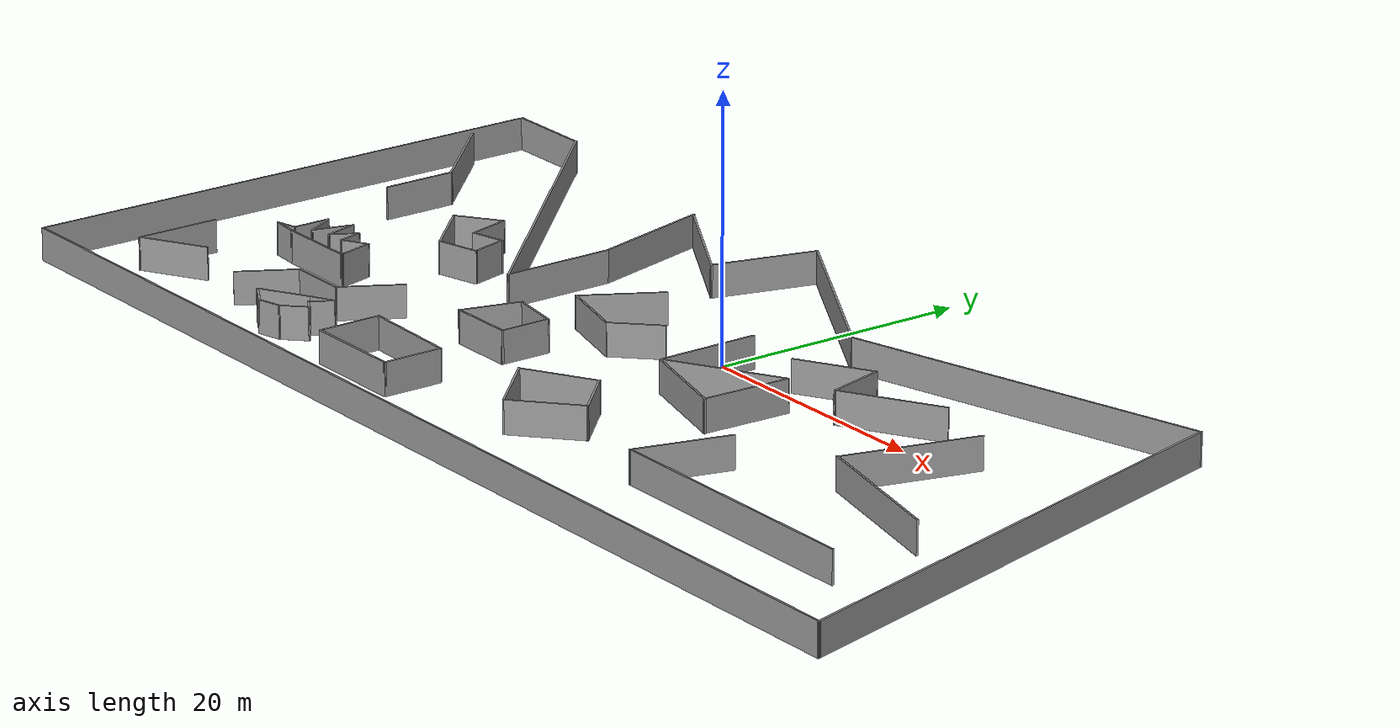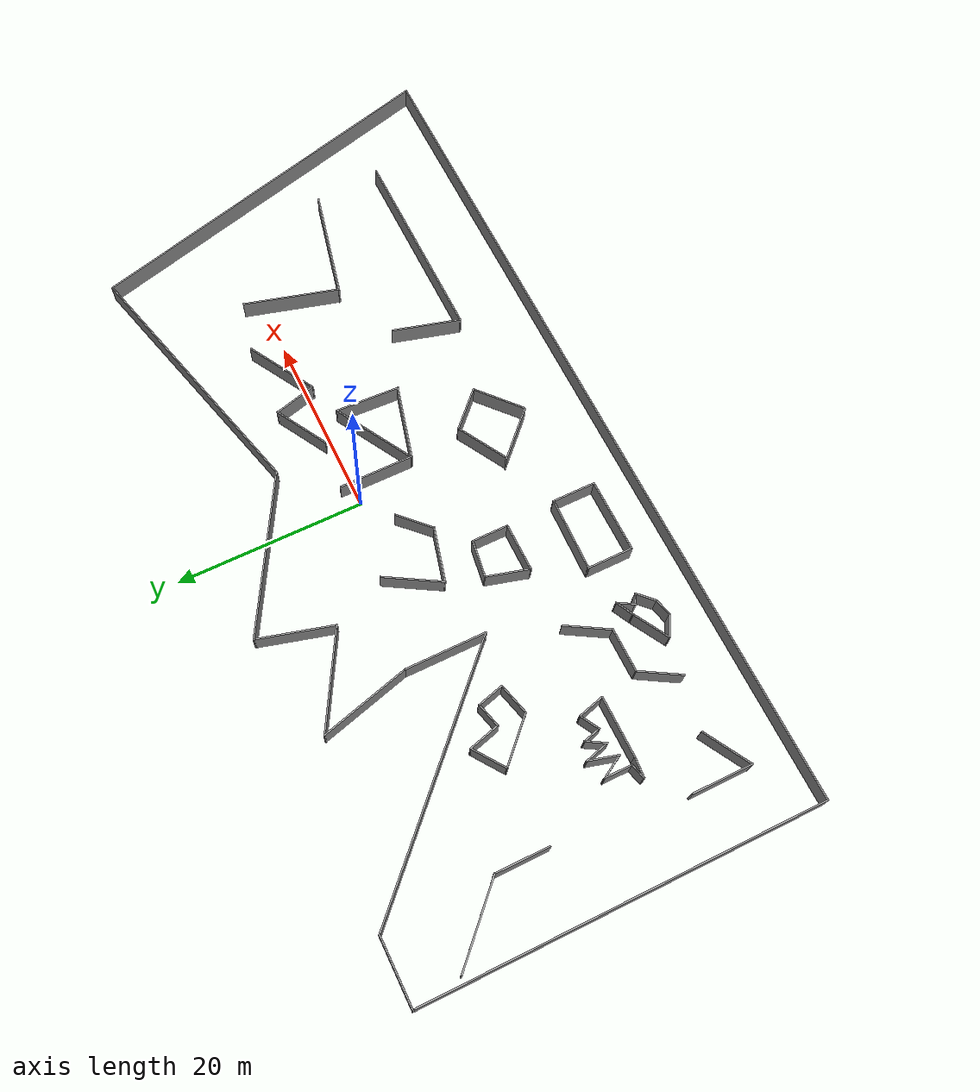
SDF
<?xml version='1.0'?>
<sdf version='1.7'>
  <model name='custommap3'>
    <pose>-0.859652 -5.04721 0 0 -0 0</pose>
    <link name='Wall_10'>
      <collision name='Wall_10_Collision'>
        <geometry>
          <box>
            <size>8.75 0.15 2.5</size>
          </box>
        </geometry>
        <pose>0 0 1.25 0 -0 0</pose>
      </collision>
      <visual name='Wall_10_Visual'>
        <pose>0 0 1.25 0 -0 0</pose>
        <geometry>
          <box>
            <size>8.75 0.15 2.5</size>
          </box>
        </geometry>
        <material>
          <script>
            <uri>file://media/materials/scripts/gazebo.material</uri>
            <name>Gazebo/Grey</name>
          </script>
          <ambient>1 1 1 1</ambient>
        </material>
        <meta>
          <layer>0</layer>
        </meta>
      </visual>
      <pose>-17.6193 4.39132 0 0 -0 -1.5708</pose>
    </link>
    <link name='Wall_11'>
      <collision name='Wall_11_Collision'>
        <geometry>
          <box>
            <size>29.75 0.15 2.5</size>
          </box>
        </geometry>
        <pose>0 0 1.25 0 -0 0</pose>
      </collision>
      <visual name='Wall_11_Visual'>
        <pose>0 0 1.25 0 -0 0</pose>
        <geometry>
          <box>
            <size>29.75 0.15 2.5</size>
          </box>
        </geometry>
        <material>
          <script>
            <uri>file://media/materials/scripts/gazebo.material</uri>
            <name>Gazebo/Grey</name>
          </script>
          <ambient>1 1 1 1</ambient>
        </material>
        <meta>
          <layer>0</layer>
        </meta>
      </visual>
      <pose>-28.0844 10.5565 0 0 -0 2.35619</pose>
    </link>
    <link name='Wall_12'>
      <collision name='Wall_12_Collision'>
        <geometry>
          <box>
            <size>7 0.15 2.5</size>
          </box>
        </geometry>
        <pose>0 0 1.25 0 -0 0</pose>
      </collision>
      <visual name='Wall_12_Visual'>
        <pose>0 0 1.25 0 -0 0</pose>
        <geometry>
          <box>
            <size>7 0.15 2.5</size>
          </box>
        </geometry>
        <material>
          <script>
            <uri>file://media/materials/scripts/gazebo.material</uri>
            <name>Gazebo/Grey</name>
          </script>
          <ambient>1 1 1 1</ambient>
        </material>
        <meta>
          <layer>0</layer>
        </meta>
      </visual>
      <pose>-41.9746 21.0217 0 0 -0 3.14159</pose>
    </link>
    <link name='Wall_14'>
      <collision name='Wall_14_Collision'>
        <geometry>
          <box>
            <size>9.25 0.15 2.5</size>
          </box>
        </geometry>
        <pose>0 0 1.25 0 -0 0</pose>
      </collision>
      <visual name='Wall_14_Visual'>
        <pose>0 0 1.25 0 -0 0</pose>
        <geometry>
          <box>
            <size>9.25 0.15 2.5</size>
          </box>
        </geometry>
        <material>
          <script>
            <uri>file://media/materials/scripts/gazebo.material</uri>
            <name>Gazebo/Grey</name>
          </script>
          <ambient>1 1 1 1</ambient>
        </material>
        <meta>
          <layer>0</layer>
        </meta>
      </visual>
      <pose>-41.4378 12.7145 0 0 -0 -0.785398</pose>
    </link>
    <link name='Wall_15'>
      <collision name='Wall_15_Collision'>
        <geometry>
          <box>
            <size>5.75 0.15 2.5</size>
          </box>
        </geometry>
        <pose>0 0 1.25 0 -0 0</pose>
      </collision>
      <visual name='Wall_15_Visual'>
        <pose>0 0 1.25 0 -0 0</pose>
        <geometry>
          <box>
            <size>5.75 0.15 2.5</size>
          </box>
        </geometry>
        <material>
          <script>
            <uri>file://media/materials/scripts/gazebo.material</uri>
            <name>Gazebo/Grey</name>
          </script>
          <ambient>1 1 1 1</ambient>
        </material>
        <meta>
          <layer>0</layer>
        </meta>
      </visual>
      <pose>-38.2204 6.6972 0 0 -0 -1.5708</pose>
    </link>
    <link name='Wall_17'>
      <collision name='Wall_17_Collision'>
        <geometry>
          <box>
            <size>6.5 0.15 2.5</size>
          </box>
        </geometry>
        <pose>0 0 1.25 0 -0 0</pose>
      </collision>
      <visual name='Wall_17_Visual'>
        <pose>0 0 1.25 0 -0 0</pose>
        <geometry>
          <box>
            <size>6.5 0.15 2.5</size>
          </box>
        </geometry>
        <material>
          <script>
            <uri>file://media/materials/scripts/gazebo.material</uri>
            <name>Gazebo/Grey</name>
          </script>
          <ambient>1 1 1 1</ambient>
        </material>
        <meta>
          <layer>0</layer>
        </meta>
      </visual>
      <pose>-31.2203 -6.99342 0 0 -0 0</pose>
    </link>
    <link name='Wall_18'>
      <collision name='Wall_18_Collision'>
        <geometry>
          <box>
            <size>3 0.15 2.5</size>
          </box>
        </geometry>
        <pose>0 0 1.25 0 -0 0</pose>
      </collision>
      <visual name='Wall_18_Visual'>
        <pose>0 0 1.25 0 -0 0</pose>
        <geometry>
          <box>
            <size>3 0.15 2.5</size>
          </box>
        </geometry>
        <material>
          <script>
            <uri>file://media/materials/scripts/gazebo.material</uri>
            <name>Gazebo/Grey</name>
          </script>
          <ambient>1 1 1 1</ambient>
        </material>
        <meta>
          <layer>0</layer>
        </meta>
      </visual>
      <pose>-28.4141 -5.61698 0 0 -0 1.8326</pose>
    </link>
    <link name='Wall_19'>
      <collision name='Wall_19_Collision'>
        <geometry>
          <box>
            <size>2.25 0.15 2.5</size>
          </box>
        </geometry>
        <pose>0 0 1.25 0 -0 0</pose>
      </collision>
      <visual name='Wall_19_Visual'>
        <pose>0 0 1.25 0 -0 0</pose>
        <geometry>
          <box>
            <size>2.25 0.15 2.5</size>
          </box>
        </geometry>
        <material>
          <script>
            <uri>file://media/materials/scripts/gazebo.material</uri>
            <name>Gazebo/Grey</name>
          </script>
          <ambient>1 1 1 1</ambient>
        </material>
        <meta>
          <layer>0</layer>
        </meta>
      </visual>
      <pose>-29.6923 -4.76553 0 0 -0 -2.61799</pose>
    </link>
    <link name='Wall_2'>
      <collision name='Wall_2_Collision'>
        <geometry>
          <box>
            <size>42 0.15 2.5</size>
          </box>
        </geometry>
        <pose>0 0 1.25 0 -0 0</pose>
      </collision>
      <visual name='Wall_2_Visual'>
        <pose>0 0 1.25 0 -0 0</pose>
        <geometry>
          <box>
            <size>42 0.15 2.5</size>
          </box>
        </geometry>
        <material>
          <script>
            <uri>file://media/materials/scripts/gazebo.material</uri>
            <name>Gazebo/Grey</name>
          </script>
          <ambient>1 1 1 1</ambient>
        </material>
        <meta>
          <layer>0</layer>
        </meta>
      </visual>
      <pose>-45.4334 -0.110896 0 0 -0 -1.5708</pose>
    </link>
    <link name='Wall_20'>
      <collision name='Wall_20_Collision'>
        <geometry>
          <box>
            <size>2 0.15 2.5</size>
          </box>
        </geometry>
        <pose>0 0 1.25 0 -0 0</pose>
      </collision>
      <visual name='Wall_20_Visual'>
        <pose>0 0 1.25 0 -0 0</pose>
        <geometry>
          <box>
            <size>2 0.15 2.5</size>
          </box>
        </geometry>
        <material>
          <script>
            <uri>file://media/materials/scripts/gazebo.material</uri>
            <name>Gazebo/Grey</name>
          </script>
          <ambient>1 1 1 1</ambient>
        </material>
        <meta>
          <layer>0</layer>
        </meta>
      </visual>
      <pose>-30.841 -4.39705 0 0 -0 1.8326</pose>
    </link>
    <link name='Wall_21'>
      <collision name='Wall_21_Collision'>
        <geometry>
          <box>
            <size>2.25 0.15 2.5</size>
          </box>
        </geometry>
        <pose>0 0 1.25 0 -0 0</pose>
      </collision>
      <visual name='Wall_21_Visual'>
        <pose>0 0 1.25 0 -0 0</pose>
        <geometry>
          <box>
            <size>2.25 0.15 2.5</size>
          </box>
        </geometry>
        <material>
          <script>
            <uri>file://media/materials/scripts/gazebo.material</uri>
            <name>Gazebo/Grey</name>
          </script>
          <ambient>1 1 1 1</ambient>
        </material>
        <meta>
          <layer>0</layer>
        </meta>
      </visual>
      <pose>-31.6054 -4.41289 0 0 -0 -2.0944</pose>
    </link>
    <link name='Wall_22'>
      <collision name='Wall_22_Collision'>
        <geometry>
          <box>
            <size>2.75 0.15 2.5</size>
          </box>
        </geometry>
        <pose>0 0 1.25 0 -0 0</pose>
      </collision>
      <visual name='Wall_22_Visual'>
        <pose>0 0 1.25 0 -0 0</pose>
        <geometry>
          <box>
            <size>2.75 0.15 2.5</size>
          </box>
        </geometry>
        <material>
          <script>
            <uri>file://media/materials/scripts/gazebo.material</uri>
            <name>Gazebo/Grey</name>
          </script>
          <ambient>1 1 1 1</ambient>
        </material>
        <meta>
          <layer>0</layer>
        </meta>
      </visual>
      <pose>-32.4669 -4.06652 0 0 -0 1.8326</pose>
    </link>
    <link name='Wall_23'>
      <collision name='Wall_23_Collision'>
        <geometry>
          <box>
            <size>3.25 0.15 2.5</size>
          </box>
        </geometry>
        <pose>0 0 1.25 0 -0 0</pose>
      </collision>
      <visual name='Wall_23_Visual'>
        <pose>0 0 1.25 0 -0 0</pose>
        <geometry>
          <box>
            <size>3.25 0.15 2.5</size>
          </box>
        </geometry>
        <material>
          <script>
            <uri>file://media/materials/scripts/gazebo.material</uri>
            <name>Gazebo/Grey</name>
          </script>
          <ambient>1 1 1 1</ambient>
        </material>
        <meta>
          <layer>0</layer>
        </meta>
      </visual>
      <pose>-33.2045 -4.308 0 0 -0 -1.8326</pose>
    </link>
    <link name='Wall_24'>
      <collision name='Wall_24_Collision'>
        <geometry>
          <box>
            <size>2.75 0.15 2.5</size>
          </box>
        </geometry>
        <pose>0 0 1.25 0 -0 0</pose>
      </collision>
      <visual name='Wall_24_Visual'>
        <pose>0 0 1.25 0 -0 0</pose>
        <geometry>
          <box>
            <size>2.75 0.15 2.5</size>
          </box>
        </geometry>
        <material>
          <script>
            <uri>file://media/materials/scripts/gazebo.material</uri>
            <name>Gazebo/Grey</name>
          </script>
          <ambient>1 1 1 1</ambient>
        </material>
        <meta>
          <layer>0</layer>
        </meta>
      </visual>
      <pose>-34.2557 -4.67935 0 0 -0 2.0944</pose>
    </link>
    <link name='Wall_25'>
      <collision name='Wall_25_Collision'>
        <geometry>
          <box>
            <size>3 0.15 2.5</size>
          </box>
        </geometry>
        <pose>0 0 1.25 0 -0 0</pose>
      </collision>
      <visual name='Wall_25_Visual'>
        <pose>0 0 1.25 0 -0 0</pose>
        <geometry>
          <box>
            <size>3 0.15 2.5</size>
          </box>
        </geometry>
        <material>
          <script>
            <uri>file://media/materials/scripts/gazebo.material</uri>
            <name>Gazebo/Grey</name>
          </script>
          <ambient>1 1 1 1</ambient>
        </material>
        <meta>
          <layer>0</layer>
        </meta>
      </visual>
      <pose>-34.9057 -4.97852 0 0 -0 -1.5708</pose>
    </link>
    <link name='Wall_26'>
      <collision name='Wall_26_Collision'>
        <geometry>
          <box>
            <size>1.75 0.15 2.5</size>
          </box>
        </geometry>
        <pose>0 0 1.25 0 -0 0</pose>
      </collision>
      <visual name='Wall_26_Visual'>
        <pose>0 0 1.25 0 -0 0</pose>
        <geometry>
          <box>
            <size>1.75 0.15 2.5</size>
          </box>
        </geometry>
        <material>
          <script>
            <uri>file://media/materials/scripts/gazebo.material</uri>
            <name>Gazebo/Grey</name>
          </script>
          <ambient>1 1 1 1</ambient>
        </material>
        <meta>
          <layer>0</layer>
        </meta>
      </visual>
      <pose>-35.6784 -6.61057 0 0 -0 -2.87979</pose>
    </link>
    <link name='Wall_27'>
      <collision name='Wall_27_Collision'>
        <geometry>
          <box>
            <size>2.21335 0.15 2.5</size>
          </box>
        </geometry>
        <pose>0 0 1.25 0 -0 0</pose>
      </collision>
      <visual name='Wall_27_Visual'>
        <pose>0 0 1.25 0 -0 0</pose>
        <geometry>
          <box>
            <size>2.21335 0.15 2.5</size>
          </box>
        </geometry>
        <material>
          <script>
            <uri>file://media/materials/scripts/gazebo.material</uri>
            <name>Gazebo/Grey</name>
          </script>
          <ambient>1 1 1 1</ambient>
        </material>
        <meta>
          <layer>0</layer>
        </meta>
      </visual>
      <pose>-35.4233 -6.90552 0 0 -0 -0.0853</pose>
    </link>
    <link name='Wall_29'>
      <collision name='Wall_29_Collision'>
        <geometry>
          <box>
            <size>5 0.15 2.5</size>
          </box>
        </geometry>
        <pose>0 0 1.25 0 -0 0</pose>
      </collision>
      <visual name='Wall_29_Visual'>
        <pose>0 0 1.25 0 -0 0</pose>
        <geometry>
          <box>
            <size>5 0.15 2.5</size>
          </box>
        </geometry>
        <material>
          <script>
            <uri>file://media/materials/scripts/gazebo.material</uri>
            <name>Gazebo/Grey</name>
          </script>
          <ambient>1 1 1 1</ambient>
        </material>
        <meta>
          <layer>0</layer>
        </meta>
      </visual>
      <pose>-21.3857 -9.02277 0 0 -0 -2.0944</pose>
    </link>
    <link name='Wall_3'>
      <collision name='Wall_3_Collision'>
        <geometry>
          <box>
            <size>91 0.15 2.5</size>
          </box>
        </geometry>
        <pose>0 0 1.25 0 -0 0</pose>
      </collision>
      <visual name='Wall_3_Visual'>
        <pose>0 0 1.25 0 -0 0</pose>
        <geometry>
          <box>
            <size>91 0.15 2.5</size>
          </box>
        </geometry>
        <material>
          <script>
            <uri>file://media/materials/scripts/gazebo.material</uri>
            <name>Gazebo/Grey</name>
          </script>
          <ambient>1 1 1 1</ambient>
        </material>
        <meta>
          <layer>0</layer>
        </meta>
      </visual>
      <pose>-0.008428 -21.0359 0 0 -0 0</pose>
    </link>
    <link name='Wall_30'>
      <collision name='Wall_30_Collision'>
        <geometry>
          <box>
            <size>4.75 0.15 2.5</size>
          </box>
        </geometry>
        <pose>0 0 1.25 0 -0 0</pose>
      </collision>
      <visual name='Wall_30_Visual'>
        <pose>0 0 1.25 0 -0 0</pose>
        <geometry>
          <box>
            <size>4.75 0.15 2.5</size>
          </box>
        </geometry>
        <material>
          <script>
            <uri>file://media/materials/scripts/gazebo.material</uri>
            <name>Gazebo/Grey</name>
          </script>
          <ambient>1 1 1 1</ambient>
        </material>
        <meta>
          <layer>0</layer>
        </meta>
      </visual>
      <pose>-24.8982 -11.1229 0 0 -0 3.14159</pose>
    </link>
    <link name='Wall_31'>
      <collision name='Wall_31_Collision'>
        <geometry>
          <box>
            <size>4.75 0.15 2.5</size>
          </box>
        </geometry>
        <pose>0 0 1.25 0 -0 0</pose>
      </collision>
      <visual name='Wall_31_Visual'>
        <pose>0 0 1.25 0 -0 0</pose>
        <geometry>
          <box>
            <size>4.75 0.15 2.5</size>
          </box>
        </geometry>
        <material>
          <script>
            <uri>file://media/materials/scripts/gazebo.material</uri>
            <name>Gazebo/Grey</name>
          </script>
          <ambient>1 1 1 1</ambient>
        </material>
        <meta>
          <layer>0</layer>
        </meta>
      </visual>
      <pose>-28.3482 -13.1147 0 0 -0 -2.0944</pose>
    </link>
    <link name='Wall_33'>
      <collision name='Wall_33_Collision'>
        <geometry>
          <box>
            <size>4.75 0.15 2.5</size>
          </box>
        </geometry>
        <pose>0 0 1.25 0 -0 0</pose>
      </collision>
      <visual name='Wall_33_Visual'>
        <pose>0 0 1.25 0 -0 0</pose>
        <geometry>
          <box>
            <size>4.75 0.15 2.5</size>
          </box>
        </geometry>
        <material>
          <script>
            <uri>file://media/materials/scripts/gazebo.material</uri>
            <name>Gazebo/Grey</name>
          </script>
          <ambient>1 1 1 1</ambient>
        </material>
        <meta>
          <layer>0</layer>
        </meta>
      </visual>
      <pose>-13.0559 -4.61584 0 0 -0 -1.8326</pose>
    </link>
    <link name='Wall_34'>
      <collision name='Wall_34_Collision'>
        <geometry>
          <box>
            <size>5.25 0.15 2.5</size>
          </box>
        </geometry>
        <pose>0 0 1.25 0 -0 0</pose>
      </collision>
      <visual name='Wall_34_Visual'>
        <pose>0 0 1.25 0 -0 0</pose>
        <geometry>
          <box>
            <size>5.25 0.15 2.5</size>
          </box>
        </geometry>
        <material>
          <script>
            <uri>file://media/materials/scripts/gazebo.material</uri>
            <name>Gazebo/Grey</name>
          </script>
          <ambient>1 1 1 1</ambient>
        </material>
        <meta>
          <layer>0</layer>
        </meta>
      </visual>
      <pose>-11.1012 -6.83747 0 0 -0 0</pose>
    </link>
    <link name='Wall_35'>
      <collision name='Wall_35_Collision'>
        <geometry>
          <box>
            <size>4 0.15 2.5</size>
          </box>
        </geometry>
        <pose>0 0 1.25 0 -0 0</pose>
      </collision>
      <visual name='Wall_35_Visual'>
        <pose>0 0 1.25 0 -0 0</pose>
        <geometry>
          <box>
            <size>4 0.15 2.5</size>
          </box>
        </geometry>
        <material>
          <script>
            <uri>file://media/materials/scripts/gazebo.material</uri>
            <name>Gazebo/Grey</name>
          </script>
          <ambient>1 1 1 1</ambient>
        </material>
        <meta>
          <layer>0</layer>
        </meta>
      </visual>
      <pose>-8.55121 -4.91247 0 0 -0 1.5708</pose>
    </link>
    <link name='Wall_36'>
      <collision name='Wall_36_Collision'>
        <geometry>
          <box>
            <size>4.10419 0.15 2.5</size>
          </box>
        </geometry>
        <pose>0 0 1.25 0 -0 0</pose>
      </collision>
      <visual name='Wall_36_Visual'>
        <pose>0 0 1.25 0 -0 0</pose>
        <geometry>
          <box>
            <size>4.10419 0.15 2.5</size>
          </box>
        </geometry>
        <material>
          <script>
            <uri>file://media/materials/scripts/gazebo.material</uri>
            <name>Gazebo/Grey</name>
          </script>
          <ambient>1 1 1 1</ambient>
        </material>
        <meta>
          <layer>0</layer>
        </meta>
      </visual>
      <pose>-10.5059 -2.69084 0 0 -0 2.99099</pose>
    </link>
    <link name='Wall_38'>
      <collision name='Wall_38_Collision'>
        <geometry>
          <box>
            <size>5.75 0.15 2.5</size>
          </box>
        </geometry>
        <pose>0 0 1.25 0 -0 0</pose>
      </collision>
      <visual name='Wall_38_Visual'>
        <pose>0 0 1.25 0 -0 0</pose>
        <geometry>
          <box>
            <size>5.75 0.15 2.5</size>
          </box>
        </geometry>
        <material>
          <script>
            <uri>file://media/materials/scripts/gazebo.material</uri>
            <name>Gazebo/Grey</name>
          </script>
          <ambient>1 1 1 1</ambient>
        </material>
        <meta>
          <layer>0</layer>
        </meta>
      </visual>
      <pose>-28.2408 2.2063 0 0 -0 -0.785398</pose>
    </link>
    <link name='Wall_39'>
      <collision name='Wall_39_Collision'>
        <geometry>
          <box>
            <size>3.5 0.15 2.5</size>
          </box>
        </geometry>
        <pose>0 0 1.25 0 -0 0</pose>
      </collision>
      <visual name='Wall_39_Visual'>
        <pose>0 0 1.25 0 -0 0</pose>
        <geometry>
          <box>
            <size>3.5 0.15 2.5</size>
          </box>
        </geometry>
        <material>
          <script>
            <uri>file://media/materials/scripts/gazebo.material</uri>
            <name>Gazebo/Grey</name>
          </script>
          <ambient>1 1 1 1</ambient>
        </material>
        <meta>
          <layer>0</layer>
        </meta>
      </visual>
      <pose>-24.6429 0.65992 0 0 -0 0.261799</pose>
    </link>
    <link name='Wall_4'>
      <collision name='Wall_4_Collision'>
        <geometry>
          <box>
            <size>41.75 0.15 2.5</size>
          </box>
        </geometry>
        <pose>0 0 1.25 0 -0 0</pose>
      </collision>
      <visual name='Wall_4_Visual'>
        <pose>0 0 1.25 0 -0 0</pose>
        <geometry>
          <box>
            <size>41.75 0.15 2.5</size>
          </box>
        </geometry>
        <material>
          <script>
            <uri>file://media/materials/scripts/gazebo.material</uri>
            <name>Gazebo/Grey</name>
          </script>
          <ambient>1 1 1 1</ambient>
        </material>
        <meta>
          <layer>0</layer>
        </meta>
      </visual>
      <pose>40.0331 -0.944638 0 0 -0 1.8326</pose>
    </link>
    <link name='Wall_40'>
      <collision name='Wall_40_Collision'>
        <geometry>
          <box>
            <size>3 0.15 2.5</size>
          </box>
        </geometry>
        <pose>0 0 1.25 0 -0 0</pose>
      </collision>
      <visual name='Wall_40_Visual'>
        <pose>0 0 1.25 0 -0 0</pose>
        <geometry>
          <box>
            <size>3 0.15 2.5</size>
          </box>
        </geometry>
        <material>
          <script>
            <uri>file://media/materials/scripts/gazebo.material</uri>
            <name>Gazebo/Grey</name>
          </script>
          <ambient>1 1 1 1</ambient>
        </material>
        <meta>
          <layer>0</layer>
        </meta>
      </visual>
      <pose>-23.3938 2.46989 0 0 -0 1.8326</pose>
    </link>
    <link name='Wall_41'>
      <collision name='Wall_41_Collision'>
        <geometry>
          <box>
            <size>2.75 0.15 2.5</size>
          </box>
        </geometry>
        <pose>0 0 1.25 0 -0 0</pose>
      </collision>
      <visual name='Wall_41_Visual'>
        <pose>0 0 1.25 0 -0 0</pose>
        <geometry>
          <box>
            <size>2.75 0.15 2.5</size>
          </box>
        </geometry>
        <material>
          <script>
            <uri>file://media/materials/scripts/gazebo.material</uri>
            <name>Gazebo/Grey</name>
          </script>
          <ambient>1 1 1 1</ambient>
        </material>
        <meta>
          <layer>0</layer>
        </meta>
      </visual>
      <pose>-25.0183 3.50987 0 0 -0 -2.87979</pose>
    </link>
    <link name='Wall_42'>
      <collision name='Wall_42_Collision'>
        <geometry>
          <box>
            <size>3.5 0.15 2.5</size>
          </box>
        </geometry>
        <pose>0 0 1.25 0 -0 0</pose>
      </collision>
      <visual name='Wall_42_Visual'>
        <pose>0 0 1.25 0 -0 0</pose>
        <geometry>
          <box>
            <size>3.5 0.15 2.5</size>
          </box>
        </geometry>
        <material>
          <script>
            <uri>file://media/materials/scripts/gazebo.material</uri>
            <name>Gazebo/Grey</name>
          </script>
          <ambient>1 1 1 1</ambient>
        </material>
        <meta>
          <layer>0</layer>
        </meta>
      </visual>
      <pose>-26.7076 4.79133 0 0 -0 1.8326</pose>
    </link>
    <link name='Wall_43'>
      <collision name='Wall_43_Collision'>
        <geometry>
          <box>
            <size>3.94812 0.15 2.5</size>
          </box>
        </geometry>
        <pose>0 0 1.25 0 -0 0</pose>
      </collision>
      <visual name='Wall_43_Visual'>
        <pose>0 0 1.25 0 -0 0</pose>
        <geometry>
          <box>
            <size>3.94812 0.15 2.5</size>
          </box>
        </geometry>
        <material>
          <script>
            <uri>file://media/materials/scripts/gazebo.material</uri>
            <name>Gazebo/Grey</name>
          </script>
          <ambient>1 1 1 1</ambient>
        </material>
        <meta>
          <layer>0</layer>
        </meta>
      </visual>
      <pose>-28.6809 5.29772 0 0 -0 -2.51634</pose>
    </link>
    <link name='Wall_45'>
      <collision name='Wall_45_Collision'>
        <geometry>
          <box>
            <size>6.5 0.15 2.5</size>
          </box>
        </geometry>
        <pose>0 0 1.25 0 -0 0</pose>
      </collision>
      <visual name='Wall_45_Visual'>
        <pose>0 0 1.25 0 -0 0</pose>
        <geometry>
          <box>
            <size>6.5 0.15 2.5</size>
          </box>
        </geometry>
        <material>
          <script>
            <uri>file://media/materials/scripts/gazebo.material</uri>
            <name>Gazebo/Grey</name>
          </script>
          <ambient>1 1 1 1</ambient>
        </material>
        <meta>
          <layer>0</layer>
        </meta>
      </visual>
      <pose>-39.6313 -13.3525 0 0 -0 -1.5708</pose>
    </link>
    <link name='Wall_46'>
      <collision name='Wall_46_Collision'>
        <geometry>
          <box>
            <size>5.5 0.15 2.5</size>
          </box>
        </geometry>
        <pose>0 0 1.25 0 -0 0</pose>
      </collision>
      <visual name='Wall_46_Visual'>
        <pose>0 0 1.25 0 -0 0</pose>
        <geometry>
          <box>
            <size>5.5 0.15 2.5</size>
          </box>
        </geometry>
        <material>
          <script>
            <uri>file://media/materials/scripts/gazebo.material</uri>
            <name>Gazebo/Grey</name>
          </script>
          <ambient>1 1 1 1</ambient>
        </material>
        <meta>
          <layer>0</layer>
        </meta>
      </visual>
      <pose>-37.3147 -15.19 0 0 -0 0.523599</pose>
    </link>
    <link name='Wall_48'>
      <collision name='Wall_48_Collision'>
        <geometry>
          <box>
            <size>6.5 0.15 2.5</size>
          </box>
        </geometry>
        <pose>0 0 1.25 0 -0 0</pose>
      </collision>
      <visual name='Wall_48_Visual'>
        <pose>0 0 1.25 0 -0 0</pose>
        <geometry>
          <box>
            <size>6.5 0.15 2.5</size>
          </box>
        </geometry>
        <material>
          <script>
            <uri>file://media/materials/scripts/gazebo.material</uri>
            <name>Gazebo/Grey</name>
          </script>
          <ambient>1 1 1 1</ambient>
        </material>
        <meta>
          <layer>0</layer>
        </meta>
      </visual>
      <pose>-9.6612 4.12533 0 0 -0 -2.0944</pose>
    </link>
    <link name='Wall_49'>
      <collision name='Wall_49_Collision'>
        <geometry>
          <box>
            <size>6 0.15 2.5</size>
          </box>
        </geometry>
        <pose>0 0 1.25 0 -0 0</pose>
      </collision>
      <visual name='Wall_49_Visual'>
        <pose>0 0 1.25 0 -0 0</pose>
        <geometry>
          <box>
            <size>6 0.15 2.5</size>
          </box>
        </geometry>
        <material>
          <script>
            <uri>file://media/materials/scripts/gazebo.material</uri>
            <name>Gazebo/Grey</name>
          </script>
          <ambient>1 1 1 1</ambient>
        </material>
        <meta>
          <layer>0</layer>
        </meta>
      </visual>
      <pose>-8.42337 0.618657 0 0 -0 -0.261799</pose>
    </link>
    <link name='Wall_5'>
      <collision name='Wall_5_Collision'>
        <geometry>
          <box>
            <size>29 0.15 2.5</size>
          </box>
        </geometry>
        <pose>0 0 1.25 0 -0 0</pose>
      </collision>
      <visual name='Wall_5_Visual'>
        <pose>0 0 1.25 0 -0 0</pose>
        <geometry>
          <box>
            <size>29 0.15 2.5</size>
          </box>
        </geometry>
        <material>
          <script>
            <uri>file://media/materials/scripts/gazebo.material</uri>
            <name>Gazebo/Grey</name>
          </script>
          <ambient>1 1 1 1</ambient>
        </material>
        <meta>
          <layer>0</layer>
        </meta>
      </visual>
      <pose>20.7162 15.4132 0 0 -0 -2.87979</pose>
    </link>
    <link name='Wall_50'>
      <collision name='Wall_50_Collision'>
        <geometry>
          <box>
            <size>4.25 0.15 2.5</size>
          </box>
        </geometry>
        <pose>0 0 1.25 0 -0 0</pose>
      </collision>
      <visual name='Wall_50_Visual'>
        <pose>0 0 1.25 0 -0 0</pose>
        <geometry>
          <box>
            <size>4.25 0.15 2.5</size>
          </box>
        </geometry>
        <material>
          <script>
            <uri>file://media/materials/scripts/gazebo.material</uri>
            <name>Gazebo/Grey</name>
          </script>
          <ambient>1 1 1 1</ambient>
        </material>
        <meta>
          <layer>0</layer>
        </meta>
      </visual>
      <pose>-4.14847 1.31118 0 0 -0 0.785398</pose>
    </link>
    <link name='Wall_54'>
      <collision name='Wall_54_Collision'>
        <geometry>
          <box>
            <size>8 0.15 2.5</size>
          </box>
        </geometry>
        <pose>0 0 1.25 0 -0 0</pose>
      </collision>
      <visual name='Wall_54_Visual'>
        <pose>0 0 1.25 0 -0 0</pose>
        <geometry>
          <box>
            <size>8 0.15 2.5</size>
          </box>
        </geometry>
        <material>
          <script>
            <uri>file://media/materials/scripts/gazebo.material</uri>
            <name>Gazebo/Grey</name>
          </script>
          <ambient>1 1 1 1</ambient>
        </material>
        <meta>
          <layer>0</layer>
        </meta>
      </visual>
      <pose>2.4691 2.52542 0 0 -0 -1.5708</pose>
    </link>
    <link name='Wall_55'>
      <collision name='Wall_55_Collision'>
        <geometry>
          <box>
            <size>9.5 0.15 2.5</size>
          </box>
        </geometry>
        <pose>0 0 1.25 0 -0 0</pose>
      </collision>
      <visual name='Wall_55_Visual'>
        <pose>0 0 1.25 0 -0 0</pose>
        <geometry>
          <box>
            <size>9.5 0.15 2.5</size>
          </box>
        </geometry>
        <material>
          <script>
            <uri>file://media/materials/scripts/gazebo.material</uri>
            <name>Gazebo/Grey</name>
          </script>
          <ambient>1 1 1 1</ambient>
        </material>
        <meta>
          <layer>0</layer>
        </meta>
      </visual>
      <pose>6.51777 0.937922 0 0 -0 0.523599</pose>
    </link>
    <link name='Wall_56'>
      <collision name='Wall_56_Collision'>
        <geometry>
          <box>
            <size>7.01054 0.15 2.5</size>
          </box>
        </geometry>
        <pose>0 0 1.25 0 -0 0</pose>
      </collision>
      <visual name='Wall_56_Visual'>
        <pose>0 0 1.25 0 -0 0</pose>
        <geometry>
          <box>
            <size>7.01054 0.15 2.5</size>
          </box>
        </geometry>
        <material>
          <script>
            <uri>file://media/materials/scripts/gazebo.material</uri>
            <name>Gazebo/Grey</name>
          </script>
          <ambient>1 1 1 1</ambient>
        </material>
        <meta>
          <layer>0</layer>
        </meta>
      </visual>
      <pose>10.4249 -0.151928 0 0 -0 -1.61206</pose>
    </link>
    <link name='Wall_57'>
      <collision name='Wall_57_Collision'>
        <geometry>
          <box>
            <size>8.25 0.15 2.5</size>
          </box>
        </geometry>
        <pose>0 0 1.25 0 -0 0</pose>
      </collision>
      <visual name='Wall_57_Visual'>
        <pose>0 0 1.25 0 -0 0</pose>
        <geometry>
          <box>
            <size>8.25 0.15 2.5</size>
          </box>
        </geometry>
        <material>
          <script>
            <uri>file://media/materials/scripts/gazebo.material</uri>
            <name>Gazebo/Grey</name>
          </script>
          <ambient>1 1 1 1</ambient>
        </material>
        <meta>
          <layer>0</layer>
        </meta>
      </visual>
      <pose>6.44217 -2.53106 0 0 -0 2.87979</pose>
    </link>
    <link name='Wall_59'>
      <collision name='Wall_59_Collision'>
        <geometry>
          <box>
            <size>6.25 0.15 2.5</size>
          </box>
        </geometry>
        <pose>0 0 1.25 0 -0 0</pose>
      </collision>
      <visual name='Wall_59_Visual'>
        <pose>0 0 1.25 0 -0 0</pose>
        <geometry>
          <box>
            <size>6.25 0.15 2.5</size>
          </box>
        </geometry>
        <material>
          <script>
            <uri>file://media/materials/scripts/gazebo.material</uri>
            <name>Gazebo/Grey</name>
          </script>
          <ambient>1 1 1 1</ambient>
        </material>
        <meta>
          <layer>0</layer>
        </meta>
      </visual>
      <pose>0.238838 -12.2634 0 0 -0 -0.785398</pose>
    </link>
    <link name='Wall_6'>
      <collision name='Wall_6_Collision'>
        <geometry>
          <box>
            <size>18 0.15 2.5</size>
          </box>
        </geometry>
        <pose>0 0 1.25 0 -0 0</pose>
      </collision>
      <visual name='Wall_6_Visual'>
        <pose>0 0 1.25 0 -0 0</pose>
        <geometry>
          <box>
            <size>18 0.15 2.5</size>
          </box>
        </geometry>
        <material>
          <script>
            <uri>file://media/materials/scripts/gazebo.material</uri>
            <name>Gazebo/Grey</name>
          </script>
          <ambient>1 1 1 1</ambient>
        </material>
        <meta>
          <layer>0</layer>
        </meta>
      </visual>
      <pose>-0.946537 16.1422 0 0 -0 2.61799</pose>
    </link>
    <link name='Wall_60'>
      <collision name='Wall_60_Collision'>
        <geometry>
          <box>
            <size>5.80784 0.15 2.5</size>
          </box>
        </geometry>
        <pose>0 0 1.25 0 -0 0</pose>
      </collision>
      <visual name='Wall_60_Visual'>
        <pose>0 0 1.25 0 -0 0</pose>
        <geometry>
          <box>
            <size>5.80784 0.15 2.5</size>
          </box>
        </geometry>
        <material>
          <script>
            <uri>file://media/materials/scripts/gazebo.material</uri>
            <name>Gazebo/Grey</name>
          </script>
          <ambient>1 1 1 1</ambient>
        </material>
        <meta>
          <layer>0</layer>
        </meta>
      </visual>
      <pose>4.64069 -12.5287 0 0 -0 0.732315</pose>
    </link>
    <link name='Wall_61'>
      <collision name='Wall_61_Collision'>
        <geometry>
          <box>
            <size>5 0.15 2.5</size>
          </box>
        </geometry>
        <pose>0 0 1.25 0 -0 0</pose>
      </collision>
      <visual name='Wall_61_Visual'>
        <pose>0 0 1.25 0 -0 0</pose>
        <geometry>
          <box>
            <size>5 0.15 2.5</size>
          </box>
        </geometry>
        <material>
          <script>
            <uri>file://media/materials/scripts/gazebo.material</uri>
            <name>Gazebo/Grey</name>
          </script>
          <ambient>1 1 1 1</ambient>
        </material>
        <meta>
          <layer>0</layer>
        </meta>
      </visual>
      <pose>5.02963 -8.92256 0 0 -0 2.35619</pose>
    </link>
    <link name='Wall_62'>
      <collision name='Wall_62_Collision'>
        <geometry>
          <box>
            <size>6 0.15 2.5</size>
          </box>
        </geometry>
        <pose>0 0 1.25 0 -0 0</pose>
      </collision>
      <visual name='Wall_62_Visual'>
        <pose>0 0 1.25 0 -0 0</pose>
        <geometry>
          <box>
            <size>6 0.15 2.5</size>
          </box>
        </geometry>
        <material>
          <script>
            <uri>file://media/materials/scripts/gazebo.material</uri>
            <name>Gazebo/Grey</name>
          </script>
          <ambient>1 1 1 1</ambient>
        </material>
        <meta>
          <layer>0</layer>
        </meta>
      </visual>
      <pose>0.781767 -8.67032 0 0 -0 -2.61799</pose>
    </link>
    <link name='Wall_64'>
      <collision name='Wall_64_Collision'>
        <geometry>
          <box>
            <size>5 0.15 2.5</size>
          </box>
        </geometry>
        <pose>0 0 1.25 0 -0 0</pose>
      </collision>
      <visual name='Wall_64_Visual'>
        <pose>0 0 1.25 0 -0 0</pose>
        <geometry>
          <box>
            <size>5 0.15 2.5</size>
          </box>
        </geometry>
        <material>
          <script>
            <uri>file://media/materials/scripts/gazebo.material</uri>
            <name>Gazebo/Grey</name>
          </script>
          <ambient>1 1 1 1</ambient>
        </material>
        <meta>
          <layer>0</layer>
        </meta>
      </visual>
      <pose>-15.9985 -14.4422 0 0 -0 -1.5708</pose>
    </link>
    <link name='Wall_65'>
      <collision name='Wall_65_Collision'>
        <geometry>
          <box>
            <size>8 0.15 2.5</size>
          </box>
        </geometry>
        <pose>0 0 1.25 0 -0 0</pose>
      </collision>
      <visual name='Wall_65_Visual'>
        <pose>0 0 1.25 0 -0 0</pose>
        <geometry>
          <box>
            <size>8 0.15 2.5</size>
          </box>
        </geometry>
        <material>
          <script>
            <uri>file://media/materials/scripts/gazebo.material</uri>
            <name>Gazebo/Grey</name>
          </script>
          <ambient>1 1 1 1</ambient>
        </material>
        <meta>
          <layer>0</layer>
        </meta>
      </visual>
      <pose>-12.0735 -16.8672 0 0 -0 0</pose>
    </link>
    <link name='Wall_66'>
      <collision name='Wall_66_Collision'>
        <geometry>
          <box>
            <size>4.75 0.15 2.5</size>
          </box>
        </geometry>
        <pose>0 0 1.25 0 -0 0</pose>
      </collision>
      <visual name='Wall_66_Visual'>
        <pose>0 0 1.25 0 -0 0</pose>
        <geometry>
          <box>
            <size>4.75 0.15 2.5</size>
          </box>
        </geometry>
        <material>
          <script>
            <uri>file://media/materials/scripts/gazebo.material</uri>
            <name>Gazebo/Grey</name>
          </script>
          <ambient>1 1 1 1</ambient>
        </material>
        <meta>
          <layer>0</layer>
        </meta>
      </visual>
      <pose>-8.14849 -14.5672 0 0 -0 1.5708</pose>
    </link>
    <link name='Wall_67'>
      <collision name='Wall_67_Collision'>
        <geometry>
          <box>
            <size>8.00398 0.15 2.5</size>
          </box>
        </geometry>
        <pose>0 0 1.25 0 -0 0</pose>
      </collision>
      <visual name='Wall_67_Visual'>
        <pose>0 0 1.25 0 -0 0</pose>
        <geometry>
          <box>
            <size>8.00398 0.15 2.5</size>
          </box>
        </geometry>
        <material>
          <script>
            <uri>file://media/materials/scripts/gazebo.material</uri>
            <name>Gazebo/Grey</name>
          </script>
          <ambient>1 1 1 1</ambient>
        </material>
        <meta>
          <layer>0</layer>
        </meta>
      </visual>
      <pose>-12.0735 -12.1422 0 0 -0 3.10976</pose>
    </link>
    <link name='Wall_69'>
      <collision name='Wall_69_Collision'>
        <geometry>
          <box>
            <size>7.5 0.15 2.5</size>
          </box>
        </geometry>
        <pose>0 0 1.25 0 -0 0</pose>
      </collision>
      <visual name='Wall_69_Visual'>
        <pose>0 0 1.25 0 -0 0</pose>
        <geometry>
          <box>
            <size>7.5 0.15 2.5</size>
          </box>
        </geometry>
        <material>
          <script>
            <uri>file://media/materials/scripts/gazebo.material</uri>
            <name>Gazebo/Grey</name>
          </script>
          <ambient>1 1 1 1</ambient>
        </material>
        <meta>
          <layer>0</layer>
        </meta>
      </visual>
      <pose>15.8816 -9.5526 0 0 -0 -1.8326</pose>
    </link>
    <link name='Wall_7'>
      <collision name='Wall_7_Collision'>
        <geometry>
          <box>
            <size>8.25 0.15 2.5</size>
          </box>
        </geometry>
        <pose>0 0 1.25 0 -0 0</pose>
      </collision>
      <visual name='Wall_7_Visual'>
        <pose>0 0 1.25 0 -0 0</pose>
        <geometry>
          <box>
            <size>8.25 0.15 2.5</size>
          </box>
        </geometry>
        <material>
          <script>
            <uri>file://media/materials/scripts/gazebo.material</uri>
            <name>Gazebo/Grey</name>
          </script>
          <ambient>1 1 1 1</ambient>
        </material>
        <meta>
          <layer>0</layer>
        </meta>
      </visual>
      <pose>-9.72403 16.6927 0 0 -0 -1.8326</pose>
    </link>
    <link name='Wall_70'>
      <collision name='Wall_70_Collision'>
        <geometry>
          <box>
            <size>21.75 0.15 2.5</size>
          </box>
        </geometry>
        <pose>0 0 1.25 0 -0 0</pose>
      </collision>
      <visual name='Wall_70_Visual'>
        <pose>0 0 1.25 0 -0 0</pose>
        <geometry>
          <box>
            <size>21.75 0.15 2.5</size>
          </box>
        </geometry>
        <material>
          <script>
            <uri>file://media/materials/scripts/gazebo.material</uri>
            <name>Gazebo/Grey</name>
          </script>
          <ambient>1 1 1 1</ambient>
        </material>
        <meta>
          <layer>0</layer>
        </meta>
      </visual>
      <pose>25.7305 -13.1024 0 0 -0 0</pose>
    </link>
    <link name='Wall_72'>
      <collision name='Wall_72_Collision'>
        <geometry>
          <box>
            <size>10.5 0.15 2.5</size>
          </box>
        </geometry>
        <pose>0 0 1.25 0 -0 0</pose>
      </collision>
      <visual name='Wall_72_Visual'>
        <pose>0 0 1.25 0 -0 0</pose>
        <geometry>
          <box>
            <size>10.5 0.15 2.5</size>
          </box>
        </geometry>
        <material>
          <script>
            <uri>file://media/materials/scripts/gazebo.material</uri>
            <name>Gazebo/Grey</name>
          </script>
          <ambient>1 1 1 1</ambient>
        </material>
        <meta>
          <layer>0</layer>
        </meta>
      </visual>
      <pose>25.3286 2.08857 0 0 -0 -1.8326</pose>
    </link>
    <link name='Wall_73'>
      <collision name='Wall_73_Collision'>
        <geometry>
          <box>
            <size>12.3261 0.15 2.5</size>
          </box>
        </geometry>
        <pose>0 0 1.25 0 -0 0</pose>
      </collision>
      <visual name='Wall_73_Visual'>
        <pose>0 0 1.25 0 -0 0</pose>
        <geometry>
          <box>
            <size>12.3261 0.15 2.5</size>
          </box>
        </geometry>
        <material>
          <script>
            <uri>file://media/materials/scripts/gazebo.material</uri>
            <name>Gazebo/Grey</name>
          </script>
          <ambient>1 1 1 1</ambient>
        </material>
        <meta>
          <layer>0</layer>
        </meta>
      </visual>
      <pose>29.8481 -4.28986 0 0 -0 -0.228621</pose>
    </link>
    <link name='Wall_75'>
      <collision name='Wall_75_Collision'>
        <geometry>
          <box>
            <size>8.25 0.15 2.5</size>
          </box>
        </geometry>
        <pose>0 0 1.25 0 -0 0</pose>
      </collision>
      <visual name='Wall_75_Visual'>
        <pose>0 0 1.25 0 -0 0</pose>
        <geometry>
          <box>
            <size>8.25 0.15 2.5</size>
          </box>
        </geometry>
        <material>
          <script>
            <uri>file://media/materials/scripts/gazebo.material</uri>
            <name>Gazebo/Grey</name>
          </script>
          <ambient>1 1 1 1</ambient>
        </material>
        <meta>
          <layer>0</layer>
        </meta>
      </visual>
      <pose>17.7123 6.47738 0 0 -0 -2.61799</pose>
    </link>
    <link name='Wall_76'>
      <collision name='Wall_76_Collision'>
        <geometry>
          <box>
            <size>4.75 0.15 2.5</size>
          </box>
        </geometry>
        <pose>0 0 1.25 0 -0 0</pose>
      </collision>
      <visual name='Wall_76_Visual'>
        <pose>0 0 1.25 0 -0 0</pose>
        <geometry>
          <box>
            <size>4.75 0.15 2.5</size>
          </box>
        </geometry>
        <material>
          <script>
            <uri>file://media/materials/scripts/gazebo.material</uri>
            <name>Gazebo/Grey</name>
          </script>
          <ambient>1 1 1 1</ambient>
        </material>
        <meta>
          <layer>0</layer>
        </meta>
      </visual>
      <pose>13.6096 6.67401 0 0 -0 1.8326</pose>
    </link>
    <link name='Wall_77'>
      <collision name='Wall_77_Collision'>
        <geometry>
          <box>
            <size>6.25 0.15 2.5</size>
          </box>
        </geometry>
        <pose>0 0 1.25 0 -0 0</pose>
      </collision>
      <visual name='Wall_77_Visual'>
        <pose>0 0 1.25 0 -0 0</pose>
        <geometry>
          <box>
            <size>6.25 0.15 2.5</size>
          </box>
        </geometry>
        <material>
          <script>
            <uri>file://media/materials/scripts/gazebo.material</uri>
            <name>Gazebo/Grey</name>
          </script>
          <ambient>1 1 1 1</ambient>
        </material>
        <meta>
          <layer>0</layer>
        </meta>
      </visual>
      <pose>10.373 7.37064 0 0 -0 -2.61799</pose>
    </link>
    <link name='Wall_79'>
      <collision name='Wall_79_Collision'>
        <geometry>
          <box>
            <size>4.25 0.15 2.5</size>
          </box>
        </geometry>
        <pose>0 0 1.25 0 -0 0</pose>
      </collision>
      <visual name='Wall_79_Visual'>
        <pose>0 0 1.25 0 -0 0</pose>
        <geometry>
          <box>
            <size>4.25 0.15 2.5</size>
          </box>
        </geometry>
        <material>
          <script>
            <uri>file://media/materials/scripts/gazebo.material</uri>
            <name>Gazebo/Grey</name>
          </script>
          <ambient>1 1 1 1</ambient>
        </material>
        <meta>
          <layer>0</layer>
        </meta>
      </visual>
      <pose>-23.859 -14.6696 0 0 -0 -2.61799</pose>
    </link>
    <link name='Wall_8'>
      <collision name='Wall_8_Collision'>
        <geometry>
          <box>
            <size>11 0.15 2.5</size>
          </box>
        </geometry>
        <pose>0 0 1.25 0 -0 0</pose>
      </collision>
      <visual name='Wall_8_Visual'>
        <pose>0 0 1.25 0 -0 0</pose>
        <geometry>
          <box>
            <size>11 0.15 2.5</size>
          </box>
        </geometry>
        <material>
          <script>
            <uri>file://media/materials/scripts/gazebo.material</uri>
            <name>Gazebo/Grey</name>
          </script>
          <ambient>1 1 1 1</ambient>
        </material>
        <meta>
          <layer>0</layer>
        </meta>
      </visual>
      <pose>-15.4704 15.4932 0 0 -0 2.61799</pose>
    </link>
    <link name='Wall_80'>
      <collision name='Wall_80_Collision'>
        <geometry>
          <box>
            <size>2.5 0.15 2.5</size>
          </box>
        </geometry>
        <pose>0 0 1.25 0 -0 0</pose>
      </collision>
      <visual name='Wall_80_Visual'>
        <pose>0 0 1.25 0 -0 0</pose>
        <geometry>
          <box>
            <size>2.5 0.15 2.5</size>
          </box>
        </geometry>
        <material>
          <script>
            <uri>file://media/materials/scripts/gazebo.material</uri>
            <name>Gazebo/Grey</name>
          </script>
          <ambient>1 1 1 1</ambient>
        </material>
        <meta>
          <layer>0</layer>
        </meta>
      </visual>
      <pose>-24.6167 -16.2821 0 0 -0 -0.523599</pose>
    </link>
    <link name='Wall_81'>
      <collision name='Wall_81_Collision'>
        <geometry>
          <box>
            <size>2 0.15 2.5</size>
          </box>
        </geometry>
        <pose>0 0 1.25 0 -0 0</pose>
      </collision>
      <visual name='Wall_81_Visual'>
        <pose>0 0 1.25 0 -0 0</pose>
        <geometry>
          <box>
            <size>2 0.15 2.5</size>
          </box>
        </geometry>
        <material>
          <script>
            <uri>file://media/materials/scripts/gazebo.material</uri>
            <name>Gazebo/Grey</name>
          </script>
          <ambient>1 1 1 1</ambient>
        </material>
        <meta>
          <layer>0</layer>
        </meta>
      </visual>
      <pose>-22.7057 -16.6302 0 0 -0 0.261799</pose>
    </link>
    <link name='Wall_82'>
      <collision name='Wall_82_Collision'>
        <geometry>
          <box>
            <size>2.25 0.15 2.5</size>
          </box>
        </geometry>
        <pose>0 0 1.25 0 -0 0</pose>
      </collision>
      <visual name='Wall_82_Visual'>
        <pose>0 0 1.25 0 -0 0</pose>
        <geometry>
          <box>
            <size>2.25 0.15 2.5</size>
          </box>
        </geometry>
        <material>
          <script>
            <uri>file://media/materials/scripts/gazebo.material</uri>
            <name>Gazebo/Grey</name>
          </script>
          <ambient>1 1 1 1</ambient>
        </material>
        <meta>
          <layer>0</layer>
        </meta>
      </visual>
      <pose>-21.0697 -15.6483 0 0 -0 0.785398</pose>
    </link>
    <link name='Wall_83'>
      <collision name='Wall_83_Collision'>
        <geometry>
          <box>
            <size>1.25 0.15 2.5</size>
          </box>
        </geometry>
        <pose>0 0 1.25 0 -0 0</pose>
      </collision>
      <visual name='Wall_83_Visual'>
        <pose>0 0 1.25 0 -0 0</pose>
        <geometry>
          <box>
            <size>1.25 0.15 2.5</size>
          </box>
        </geometry>
        <material>
          <script>
            <uri>file://media/materials/scripts/gazebo.material</uri>
            <name>Gazebo/Grey</name>
          </script>
          <ambient>1 1 1 1</ambient>
        </material>
        <meta>
          <layer>0</layer>
        </meta>
      </visual>
      <pose>-20.8036 -14.6308 0 0 -0 2.61799</pose>
    </link>
    <link name='Wall_84'>
      <collision name='Wall_84_Collision'>
        <geometry>
          <box>
            <size>2 0.15 2.5</size>
          </box>
        </geometry>
        <pose>0 0 1.25 0 -0 0</pose>
      </collision>
      <visual name='Wall_84_Visual'>
        <pose>0 0 1.25 0 -0 0</pose>
        <geometry>
          <box>
            <size>2 0.15 2.5</size>
          </box>
        </geometry>
        <material>
          <script>
            <uri>file://media/materials/scripts/gazebo.material</uri>
            <name>Gazebo/Grey</name>
          </script>
          <ambient>1 1 1 1</ambient>
        </material>
        <meta>
          <layer>0</layer>
        </meta>
      </visual>
      <pose>-20.8174 -13.5548 0 0 -0 1.0472</pose>
    </link>
    <link name='Wall_85'>
      <collision name='Wall_85_Collision'>
        <geometry>
          <box>
            <size>2.09477 0.15 2.5</size>
          </box>
        </geometry>
        <pose>0 0 1.25 0 -0 0</pose>
      </collision>
      <visual name='Wall_85_Visual'>
        <pose>0 0 1.25 0 -0 0</pose>
        <geometry>
          <box>
            <size>2.09477 0.15 2.5</size>
          </box>
        </geometry>
        <material>
          <script>
            <uri>file://media/materials/scripts/gazebo.material</uri>
            <name>Gazebo/Grey</name>
          </script>
          <ambient>1 1 1 1</ambient>
        </material>
        <meta>
          <layer>0</layer>
        </meta>
      </visual>
      <pose>-21.2192 -13.1991 0 0 -0 -2.66574</pose>
    </link>
    <link name='Wall_9'>
      <collision name='Wall_9_Collision'>
        <geometry>
          <box>
            <size>10 0.15 2.5</size>
          </box>
        </geometry>
        <pose>0 0 1.25 0 -0 0</pose>
      </collision>
      <visual name='Wall_9_Visual'>
        <pose>0 0 1.25 0 -0 0</pose>
        <geometry>
          <box>
            <size>10 0.15 2.5</size>
          </box>
        </geometry>
        <material>
          <script>
            <uri>file://media/materials/scripts/gazebo.material</uri>
            <name>Gazebo/Grey</name>
          </script>
          <ambient>1 1 1 1</ambient>
        </material>
        <meta>
          <layer>0</layer>
        </meta>
      </visual>
      <pose>-18.8939 13.4485 0 0 -0 -1.309</pose>
    </link>
    <static>1</static>
  </model>
</sdf>
